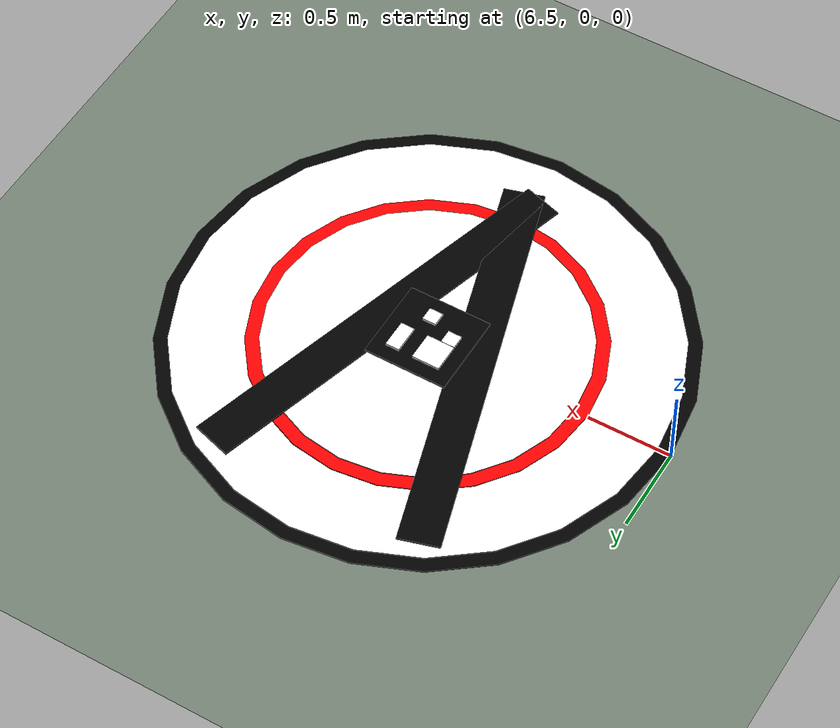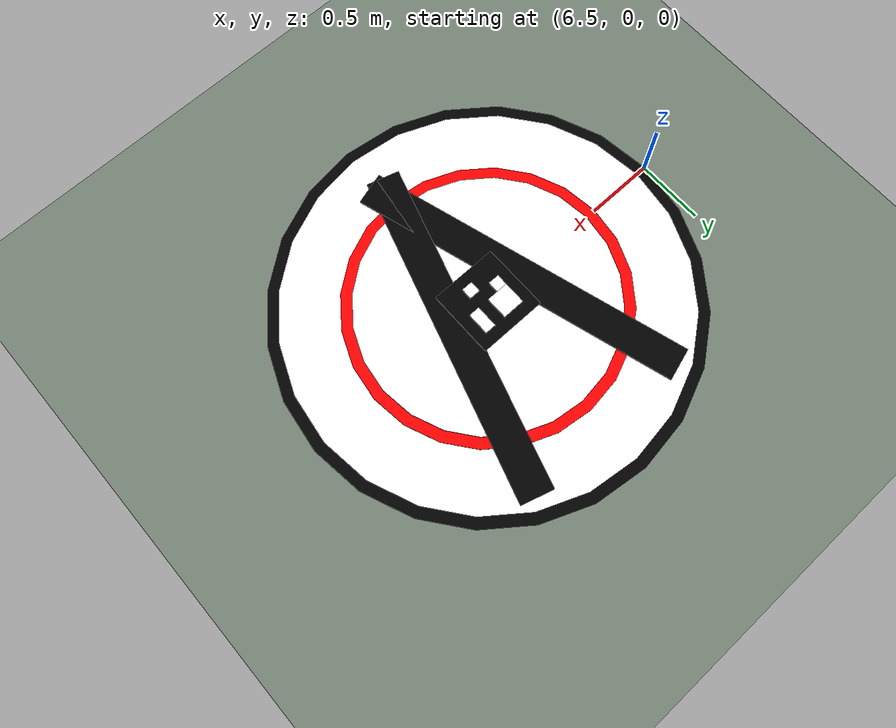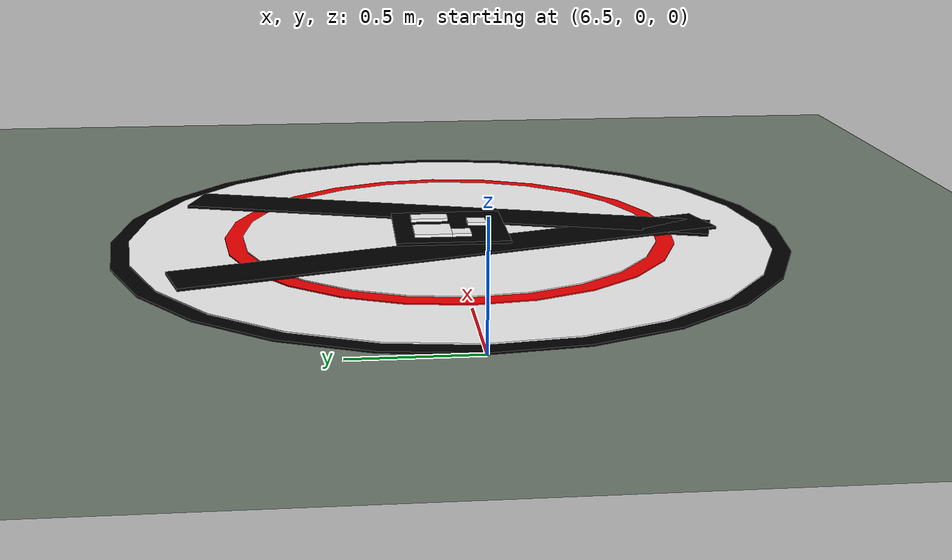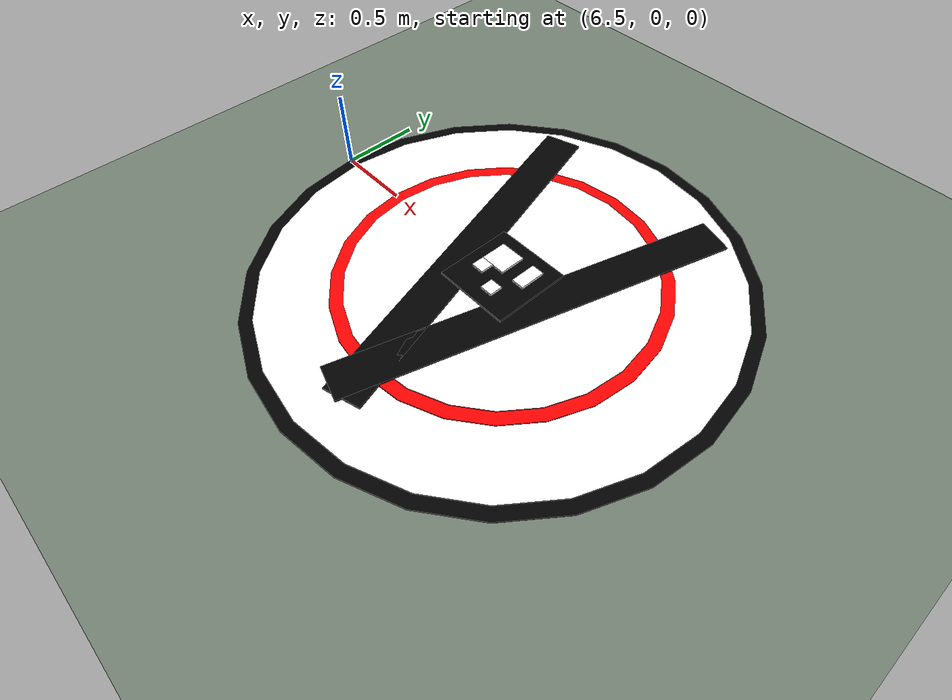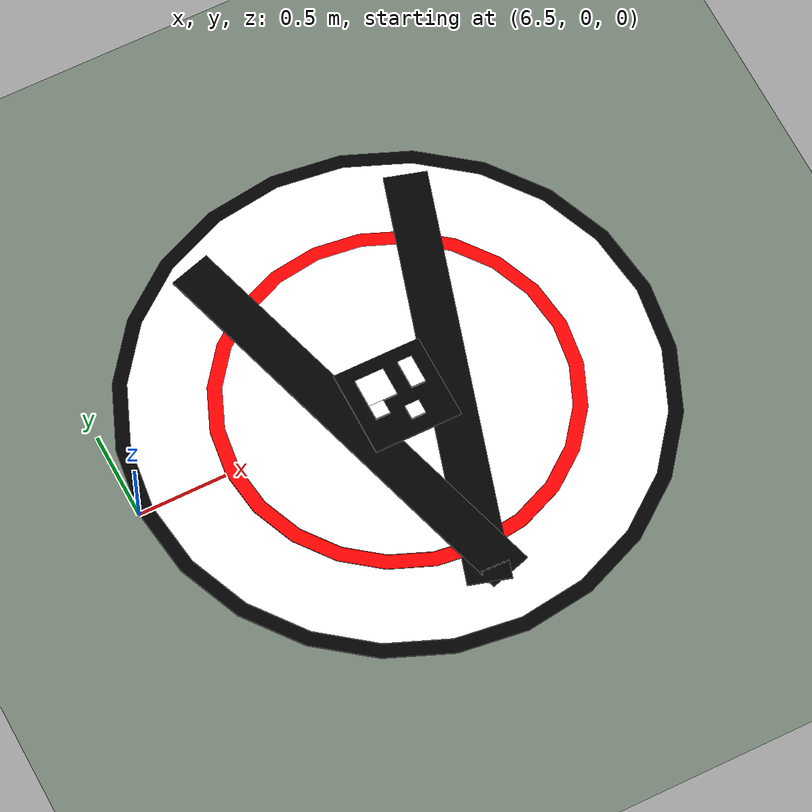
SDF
<?xml version="1.0"?>
<sdf version="1.10">
  <world name="psi_vtol_world">
    <gravity>0 0 -9.80665</gravity>
    <magnetic_field>2.75e-05 5.35e-06 -1.60e-05</magnetic_field>
    <atmosphere type="adiabatic"/>

    <!-- Reference origin for the navsat/GPS sensor. Update to the real test site. -->
    <spherical_coordinates>
      <surface_model>EARTH_WGS84</surface_model>
      <latitude_deg>37.0</latitude_deg>
      <longitude_deg>127.0</longitude_deg>
      <elevation>0</elevation>
      <heading_deg>0</heading_deg>
    </spherical_coordinates>

    <physics name="1ms" type="ignored">
      <max_step_size>0.001</max_step_size>
      <real_time_factor>1.0</real_time_factor>
    </physics>

    <scene>
      <ambient>0.4 0.4 0.4 1</ambient>
      <background>0.7 0.8 1.0 1</background>
      <shadows>true</shadows>

      <sky>
        <time>14</time>
        <sunrise>6</sunrise>
        <sunset>19</sunset>
        <clouds>
          <speed>1.2</speed>
          <direction>0.8</direction>
          <humidity>0.65</humidity>
          <mean_size>0.7</mean_size>
          <ambient>0.8 0.8 0.8 1</ambient>
        </clouds>
      </sky>

      <fog>
        <type>linear</type>
        <color>0.75 0.78 0.82 1</color>
        <start>80</start>
        <end>600</end>
        <density>0.2</density>
      </fog>
    </scene>

    <light name="sun" type="directional">
      <cast_shadows>true</cast_shadows>
      <pose>0 0 10 0 0 0</pose>
      <diffuse>0.8 0.8 0.8 1</diffuse>
      <specular>0.2 0.2 0.2 1</specular>
      <attenuation>
        <range>1000</range>
        <constant>0.9</constant>
        <linear>0.01</linear>
        <quadratic>0.001</quadratic>
      </attenuation>
      <direction>-0.5 0.1 -0.9</direction>
    </light>

    <model name="ground_plane">
      <static>true</static>
      <link name="link">
        <collision name="collision">
          <geometry>
            <plane>
              <normal>0 0 1</normal>
              <size>200 200</size>
            </plane>
          </geometry>
        </collision>
        <visual name="visual">
          <geometry>
            <plane>
              <normal>0 0 1</normal>
              <size>200 200</size>
            </plane>
          </geometry>
          <material>
            <ambient>0.45 0.50 0.45 1</ambient>
            <diffuse>0.45 0.50 0.45 1</diffuse>
          </material>
        </visual>
      </link>
    </model>

    <!-- Vertiport target pad: 3 m outer diameter, 2 m red safety area, 0.5 m center marker. -->
    <model name="vertiport_pad">
      <static>true</static>
      <pose>8 0 0 0 0 0</pose>
      <link name="link">
        <!-- Outer 3 m black boundary, drawn as a thin annulus by stacking disks. -->
        <visual name="outer_black_disk">
          <pose>0 0 0.004 0 0 0</pose>
          <geometry>
            <cylinder>
              <radius>1.50</radius>
              <length>0.008</length>
            </cylinder>
          </geometry>
          <material>
            <ambient>0 0 0 1</ambient>
            <diffuse>0 0 0 1</diffuse>
          </material>
          <cast_shadows>false</cast_shadows>
        </visual>
        <visual name="outer_white_fill">
          <pose>0 0 0.009 0 0 0</pose>
          <geometry>
            <cylinder>
              <radius>1.42</radius>
              <length>0.008</length>
            </cylinder>
          </geometry>
          <material>
            <ambient>1 1 1 1</ambient>
            <diffuse>1 1 1 1</diffuse>
          </material>
          <cast_shadows>false</cast_shadows>
        </visual>

        <!-- 2 m red safety boundary. -->
        <visual name="safety_red_disk">
          <pose>0 0 0.014 0 0 0</pose>
          <geometry>
            <cylinder>
              <radius>1.00</radius>
              <length>0.008</length>
            </cylinder>
          </geometry>
          <material>
            <ambient>1 0 0 1</ambient>
            <diffuse>1 0 0 1</diffuse>
          </material>
          <cast_shadows>false</cast_shadows>
        </visual>
        <visual name="safety_white_fill">
          <pose>0 0 0.019 0 0 0</pose>
          <geometry>
            <cylinder>
              <radius>0.92</radius>
              <length>0.008</length>
            </cylinder>
          </geometry>
          <material>
            <ambient>1 1 1 1</ambient>
            <diffuse>1 1 1 1</diffuse>
          </material>
          <cast_shadows>false</cast_shadows>
        </visual>

        <!-- Large V mark. -->
        <visual name="v_left_arm">
          <pose>-0.29 0 0.026 0 0 0.29</pose>
          <geometry>
            <box>
              <size>0.24 2.45 0.012</size>
            </box>
          </geometry>
          <material>
            <ambient>0 0 0 1</ambient>
            <diffuse>0 0 0 1</diffuse>
          </material>
          <cast_shadows>false</cast_shadows>
        </visual>
        <visual name="v_right_arm">
          <pose>0.29 0 0.026 0 0 -0.29</pose>
          <geometry>
            <box>
              <size>0.24 2.45 0.012</size>
            </box>
          </geometry>
          <material>
            <ambient>0 0 0 1</ambient>
            <diffuse>0 0 0 1</diffuse>
          </material>
          <cast_shadows>false</cast_shadows>
        </visual>

        <!-- Center 0.5 m marker, approximating the provided ArUco-like symbol. -->
        <visual name="center_black_square">
          <pose>0 0 0.040 0 0 0</pose>
          <geometry>
            <box>
              <size>0.50 0.50 0.012</size>
            </box>
          </geometry>
          <material>
            <ambient>0 0 0 1</ambient>
            <diffuse>0 0 0 1</diffuse>
          </material>
          <cast_shadows>false</cast_shadows>
        </visual>

        <!-- White marker blocks scaled from the reference image. -->
        <visual name="center_white_upper_left_block">
          <pose>-0.083380 0.083380 0.052 0 0 0</pose>
          <geometry>
            <box>
              <size>0.166761 0.166761 0.014</size>
            </box>
          </geometry>
          <material>
            <ambient>1 1 1 1</ambient>
            <diffuse>1 1 1 1</diffuse>
          </material>
          <cast_shadows>false</cast_shadows>
        </visual>
        <visual name="center_white_lower_left_stem">
          <pose>-0.125000 -0.041620 0.053 0 0 0</pose>
          <geometry>
            <box>
              <size>0.083521 0.083239 0.014</size>
            </box>
          </geometry>
          <material>
            <ambient>1 1 1 1</ambient>
            <diffuse>1 1 1 1</diffuse>
          </material>
          <cast_shadows>false</cast_shadows>
        </visual>
        <visual name="center_white_upper_right_block">
          <pose>0.124859 0.083380 0.054 0 0 0</pose>
          <geometry>
            <box>
              <size>0.083239 0.166761 0.014</size>
            </box>
          </geometry>
          <material>
            <ambient>1 1 1 1</ambient>
            <diffuse>1 1 1 1</diffuse>
          </material>
          <cast_shadows>false</cast_shadows>
        </visual>
        <visual name="center_white_bottom_block">
          <pose>0.041620 -0.124859 0.055 0 0 0</pose>
          <geometry>
            <box>
              <size>0.083239 0.083239 0.014</size>
            </box>
          </geometry>
          <material>
            <ambient>1 1 1 1</ambient>
            <diffuse>1 1 1 1</diffuse>
          </material>
          <cast_shadows>false</cast_shadows>
        </visual>
      </link>
    </model>
    <!-- Core Gazebo Sim systems. -->
    <plugin filename="gz-sim-physics-system" name="gz::sim::systems::Physics"/>
    <plugin filename="gz-sim-user-commands-system" name="gz::sim::systems::UserCommands"/>
    <plugin filename="gz-sim-scene-broadcaster-system" name="gz::sim::systems::SceneBroadcaster"/>

    <!-- Sensor systems required by the sensors declared inside the VTOL model SDF. -->
    <plugin filename="gz-sim-sensors-system" name="gz::sim::systems::Sensors">
      <render_engine>ogre2</render_engine>
    </plugin>
    <plugin filename="gz-sim-imu-system" name="gz::sim::systems::Imu"/>
    <plugin filename="gz-sim-air-pressure-system" name="gz::sim::systems::AirPressure"/>
    <plugin filename="gz-sim-magnetometer-system" name="gz::sim::systems::Magnetometer"/>
    <plugin filename="gz-sim-navsat-system" name="gz::sim::systems::NavSat"/>

    <!--
      Wind model.
      Mean wind is approximately 3 m/s from +X toward -X direction, with slow
      gust variation. Tune magnitude/direction after comparing with flight-test
      conditions.
    -->
    <wind>
      <linear_velocity>-3.0 0 0</linear_velocity>
    </wind>
    <plugin filename="gz-sim-wind-effects-system" name="gz::sim::systems::WindEffects">
      <horizontal>
        <magnitude>
          <time_for_rise>10</time_for_rise>
          <sin>
            <amplitude_percent>0.20</amplitude_percent>
            <period>30</period>
          </sin>
          <noise type="gaussian">
            <mean>0</mean>
            <stddev>0.15</stddev>
          </noise>
        </magnitude>
        <direction>
          <time_for_rise>10</time_for_rise>
          <sin>
            <amplitude>0.35</amplitude>
            <period>45</period>
          </sin>
          <noise type="gaussian">
            <mean>0</mean>
            <stddev>0.05</stddev>
          </noise>
        </direction>
      </horizontal>
      <vertical>
        <noise type="gaussian">
          <mean>0</mean>
          <stddev>0.05</stddev>
        </noise>
      </vertical>
    </plugin>

    <!-- Keep this world.sdf in the same directory as the model SDF, or replace this with a model:// URI. -->
  </world>
</sdf>
